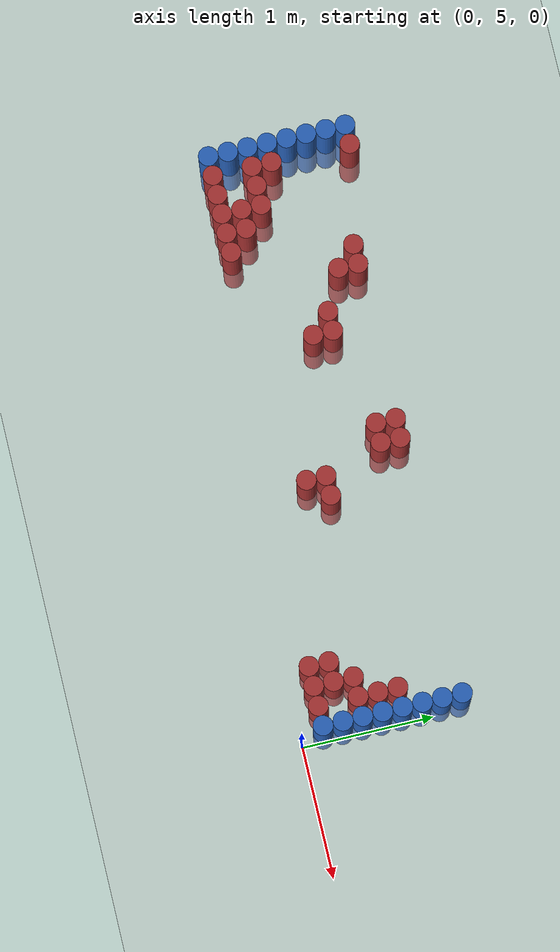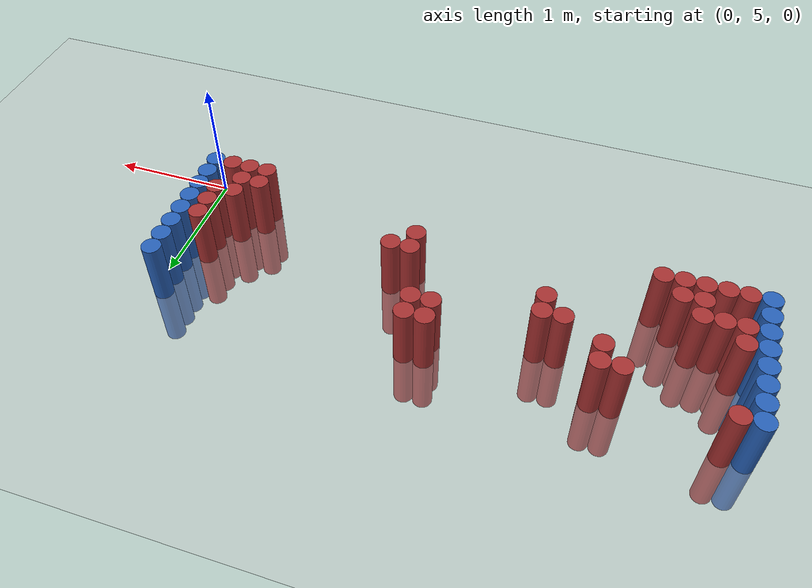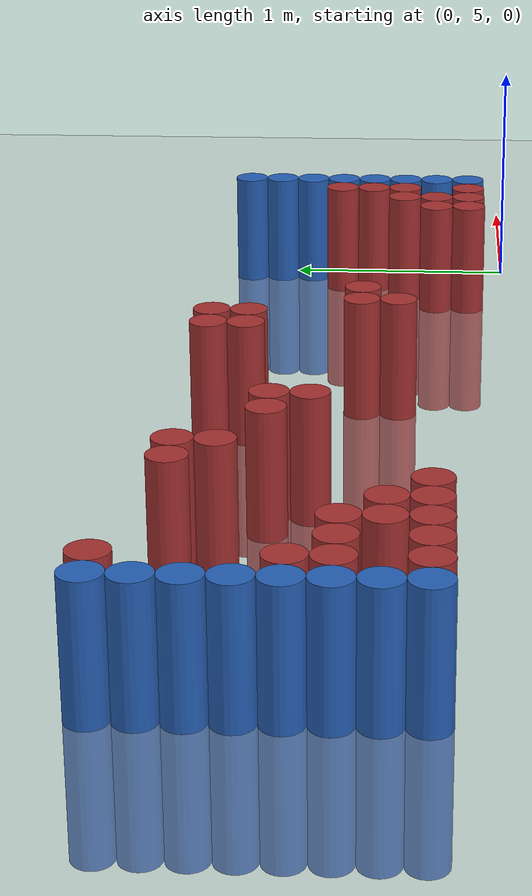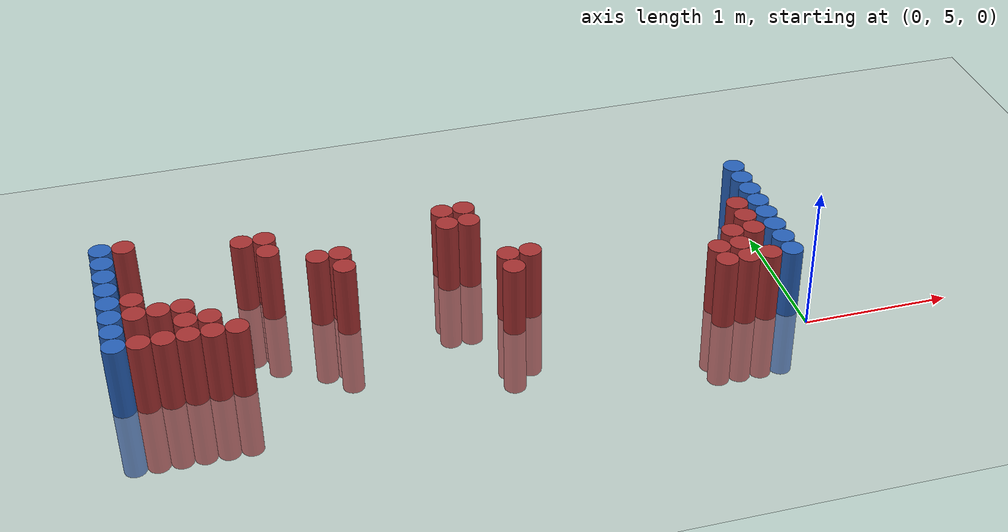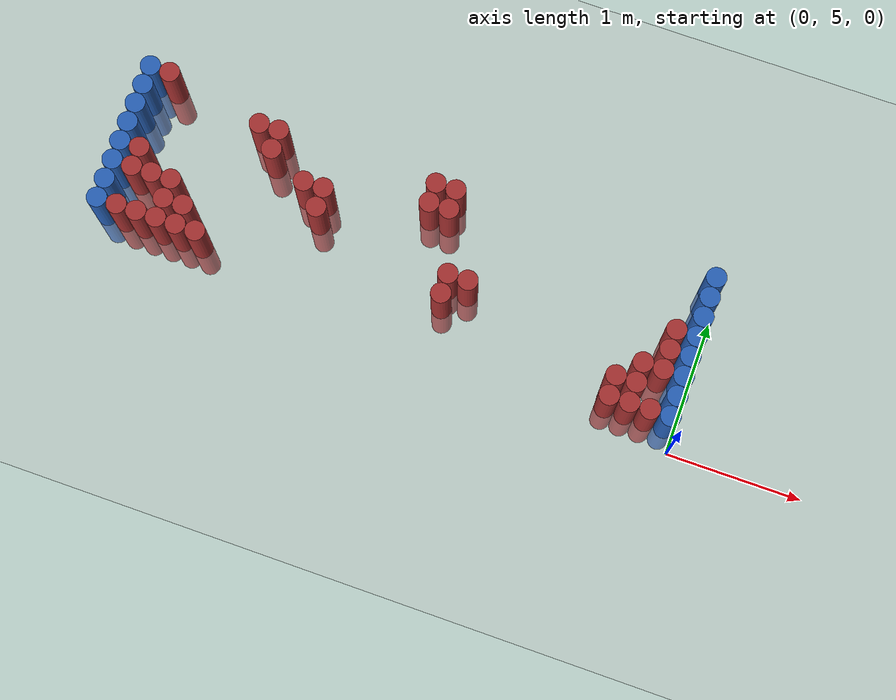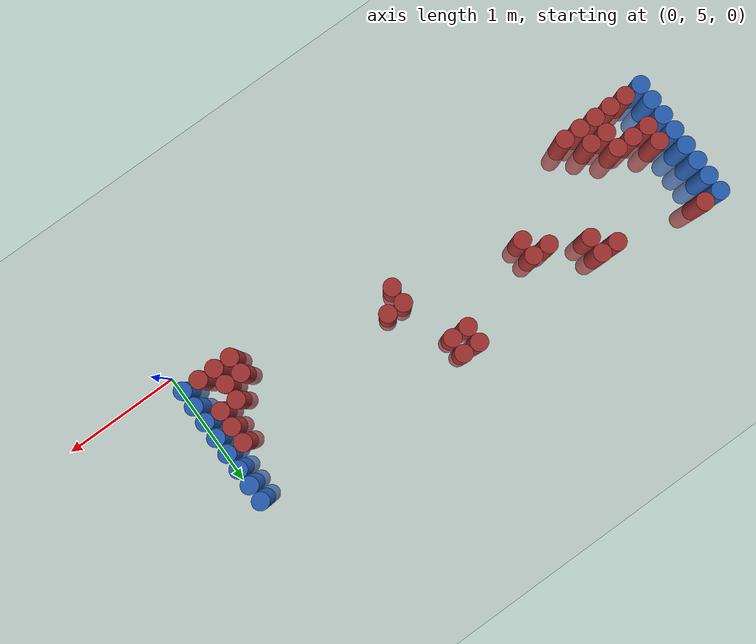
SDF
<sdf version="1.6">
 <world name="default">
  <model name="ground_plane">
   <static>1</static>
   <link name="link">
    <collision name="collision">
     <geometry><plane><normal>0 0 1</normal><size>100 100</size></plane></geometry>
     <surface><friction><ode><mu>100</mu><mu2>50</mu2></ode></friction></surface>
    </collision>
    <visual name="visual">
     <cast_shadows>0</cast_shadows>
     <geometry><plane><normal>0 0 1</normal><size>100 100</size></plane></geometry>
     <material>
      <script><uri>file://media/materials/scripts/gazebo.material</uri><name>Gazebo/Grey</name></script>
     </material>
    </visual>
   </link>
  </model>
  <model name="unit_cylinder_97">
   <static>1</static>
   <pose>-4.425000 5.325000 0.000000 0.000000 0.000000 0.000000</pose>
   <link name="link">
    <inertial>
     <mass>1</mass>
     <inertia><ixx>0.145833</ixx><ixy>0</ixy><ixz>0</ixz><iyy>0.145833</iyy><iyz>0</iyz><izz>0.125</izz></inertia>
    </inertial>
    <collision name="collision">
     <geometry><cylinder><radius>0.075000</radius><length>1</length></cylinder></geometry>
    </collision>
    <visual name="visual">
     <geometry><cylinder><radius>0.075000</radius><length>1</length></cylinder></geometry>
     <material>
      <ambient>0.152000 0.379000 0.720000 1</ambient>
      <diffuse>0.152000 0.379000 0.720000 1</diffuse>
     </material>
     <material>
      <script><name>Gazebo/Grey</name><uri>file://media/materials/scripts/gazebo.material</uri></script>
     </material>
    </visual>
   </link>
  </model>
  <model name="unit_cylinder_98">
   <static>1</static>
   <pose>-4.425000 5.475000 0.000000 0.000000 0.000000 0.000000</pose>
   <link name="link">
    <inertial>
     <mass>1</mass>
     <inertia><ixx>0.145833</ixx><ixy>0</ixy><ixz>0</ixz><iyy>0.145833</iyy><iyz>0</iyz><izz>0.125</izz></inertia>
    </inertial>
    <collision name="collision">
     <geometry><cylinder><radius>0.075000</radius><length>1</length></cylinder></geometry>
    </collision>
    <visual name="visual">
     <geometry><cylinder><radius>0.075000</radius><length>1</length></cylinder></geometry>
     <material>
      <ambient>0.152000 0.379000 0.720000 1</ambient>
      <diffuse>0.152000 0.379000 0.720000 1</diffuse>
     </material>
     <material>
      <script><name>Gazebo/Grey</name><uri>file://media/materials/scripts/gazebo.material</uri></script>
     </material>
    </visual>
   </link>
  </model>
  <model name="unit_cylinder_99">
   <static>1</static>
   <pose>-4.425000 5.625000 0.000000 0.000000 0.000000 0.000000</pose>
   <link name="link">
    <inertial>
     <mass>1</mass>
     <inertia><ixx>0.145833</ixx><ixy>0</ixy><ixz>0</ixz><iyy>0.145833</iyy><iyz>0</iyz><izz>0.125</izz></inertia>
    </inertial>
    <collision name="collision">
     <geometry><cylinder><radius>0.075000</radius><length>1</length></cylinder></geometry>
    </collision>
    <visual name="visual">
     <geometry><cylinder><radius>0.075000</radius><length>1</length></cylinder></geometry>
     <material>
      <ambient>0.152000 0.379000 0.720000 1</ambient>
      <diffuse>0.152000 0.379000 0.720000 1</diffuse>
     </material>
     <material>
      <script><name>Gazebo/Grey</name><uri>file://media/materials/scripts/gazebo.material</uri></script>
     </material>
    </visual>
   </link>
  </model>
  <model name="unit_cylinder_100">
   <static>1</static>
   <pose>-4.425000 5.775000 0.000000 0.000000 0.000000 0.000000</pose>
   <link name="link">
    <inertial>
     <mass>1</mass>
     <inertia><ixx>0.145833</ixx><ixy>0</ixy><ixz>0</ixz><iyy>0.145833</iyy><iyz>0</iyz><izz>0.125</izz></inertia>
    </inertial>
    <collision name="collision">
     <geometry><cylinder><radius>0.075000</radius><length>1</length></cylinder></geometry>
    </collision>
    <visual name="visual">
     <geometry><cylinder><radius>0.075000</radius><length>1</length></cylinder></geometry>
     <material>
      <ambient>0.152000 0.379000 0.720000 1</ambient>
      <diffuse>0.152000 0.379000 0.720000 1</diffuse>
     </material>
     <material>
      <script><name>Gazebo/Grey</name><uri>file://media/materials/scripts/gazebo.material</uri></script>
     </material>
    </visual>
   </link>
  </model>
  <model name="unit_cylinder_101">
   <static>1</static>
   <pose>-4.425000 5.925000 0.000000 0.000000 0.000000 0.000000</pose>
   <link name="link">
    <inertial>
     <mass>1</mass>
     <inertia><ixx>0.145833</ixx><ixy>0</ixy><ixz>0</ixz><iyy>0.145833</iyy><iyz>0</iyz><izz>0.125</izz></inertia>
    </inertial>
    <collision name="collision">
     <geometry><cylinder><radius>0.075000</radius><length>1</length></cylinder></geometry>
    </collision>
    <visual name="visual">
     <geometry><cylinder><radius>0.075000</radius><length>1</length></cylinder></geometry>
     <material>
      <ambient>0.152000 0.379000 0.720000 1</ambient>
      <diffuse>0.152000 0.379000 0.720000 1</diffuse>
     </material>
     <material>
      <script><name>Gazebo/Grey</name><uri>file://media/materials/scripts/gazebo.material</uri></script>
     </material>
    </visual>
   </link>
  </model>
  <model name="unit_cylinder_102">
   <static>1</static>
   <pose>-4.425000 6.075000 0.000000 0.000000 0.000000 0.000000</pose>
   <link name="link">
    <inertial>
     <mass>1</mass>
     <inertia><ixx>0.145833</ixx><ixy>0</ixy><ixz>0</ixz><iyy>0.145833</iyy><iyz>0</iyz><izz>0.125</izz></inertia>
    </inertial>
    <collision name="collision">
     <geometry><cylinder><radius>0.075000</radius><length>1</length></cylinder></geometry>
    </collision>
    <visual name="visual">
     <geometry><cylinder><radius>0.075000</radius><length>1</length></cylinder></geometry>
     <material>
      <ambient>0.152000 0.379000 0.720000 1</ambient>
      <diffuse>0.152000 0.379000 0.720000 1</diffuse>
     </material>
     <material>
      <script><name>Gazebo/Grey</name><uri>file://media/materials/scripts/gazebo.material</uri></script>
     </material>
    </visual>
   </link>
  </model>
  <model name="unit_cylinder_103">
   <static>1</static>
   <pose>-4.425000 6.225000 0.000000 0.000000 0.000000 0.000000</pose>
   <link name="link">
    <inertial>
     <mass>1</mass>
     <inertia><ixx>0.145833</ixx><ixy>0</ixy><ixz>0</ixz><iyy>0.145833</iyy><iyz>0</iyz><izz>0.125</izz></inertia>
    </inertial>
    <collision name="collision">
     <geometry><cylinder><radius>0.075000</radius><length>1</length></cylinder></geometry>
    </collision>
    <visual name="visual">
     <geometry><cylinder><radius>0.075000</radius><length>1</length></cylinder></geometry>
     <material>
      <ambient>0.152000 0.379000 0.720000 1</ambient>
      <diffuse>0.152000 0.379000 0.720000 1</diffuse>
     </material>
     <material>
      <script><name>Gazebo/Grey</name><uri>file://media/materials/scripts/gazebo.material</uri></script>
     </material>
    </visual>
   </link>
  </model>
  <model name="unit_cylinder_104">
   <static>1</static>
   <pose>-4.425000 6.375000 0.000000 0.000000 0.000000 0.000000</pose>
   <link name="link">
    <inertial>
     <mass>1</mass>
     <inertia><ixx>0.145833</ixx><ixy>0</ixy><ixz>0</ixz><iyy>0.145833</iyy><iyz>0</iyz><izz>0.125</izz></inertia>
    </inertial>
    <collision name="collision">
     <geometry><cylinder><radius>0.075000</radius><length>1</length></cylinder></geometry>
    </collision>
    <visual name="visual">
     <geometry><cylinder><radius>0.075000</radius><length>1</length></cylinder></geometry>
     <material>
      <ambient>0.152000 0.379000 0.720000 1</ambient>
      <diffuse>0.152000 0.379000 0.720000 1</diffuse>
     </material>
     <material>
      <script><name>Gazebo/Grey</name><uri>file://media/materials/scripts/gazebo.material</uri></script>
     </material>
    </visual>
   </link>
  </model>
  <model name="unit_cylinder_127">
   <static>1</static>
   <pose>-4.275000 5.325000 0.000000 0.000000 0.000000 0.000000</pose>
   <link name="link">
    <inertial>
     <mass>1</mass>
     <inertia><ixx>0.145833</ixx><ixy>0</ixy><ixz>0</ixz><iyy>0.145833</iyy><iyz>0</iyz><izz>0.125</izz></inertia>
    </inertial>
    <collision name="collision">
     <geometry><cylinder><radius>0.075000</radius><length>1</length></cylinder></geometry>
    </collision>
    <visual name="visual">
     <geometry><cylinder><radius>0.075000</radius><length>1</length></cylinder></geometry>
     <material>
      <ambient>0.648000 0.192000 0.192000 1</ambient>
      <diffuse>0.648000 0.192000 0.192000 1</diffuse>
     </material>
     <material>
      <script><name>Gazebo/Grey</name><uri>file://media/materials/scripts/gazebo.material</uri></script>
     </material>
    </visual>
   </link>
  </model>
  <model name="unit_cylinder_128">
   <static>1</static>
   <pose>-4.275000 5.625000 0.000000 0.000000 0.000000 0.000000</pose>
   <link name="link">
    <inertial>
     <mass>1</mass>
     <inertia><ixx>0.145833</ixx><ixy>0</ixy><ixz>0</ixz><iyy>0.145833</iyy><iyz>0</iyz><izz>0.125</izz></inertia>
    </inertial>
    <collision name="collision">
     <geometry><cylinder><radius>0.075000</radius><length>1</length></cylinder></geometry>
    </collision>
    <visual name="visual">
     <geometry><cylinder><radius>0.075000</radius><length>1</length></cylinder></geometry>
     <material>
      <ambient>0.648000 0.192000 0.192000 1</ambient>
      <diffuse>0.648000 0.192000 0.192000 1</diffuse>
     </material>
     <material>
      <script><name>Gazebo/Grey</name><uri>file://media/materials/scripts/gazebo.material</uri></script>
     </material>
    </visual>
   </link>
  </model>
  <model name="unit_cylinder_129">
   <static>1</static>
   <pose>-4.275000 5.775000 0.000000 0.000000 0.000000 0.000000</pose>
   <link name="link">
    <inertial>
     <mass>1</mass>
     <inertia><ixx>0.145833</ixx><ixy>0</ixy><ixz>0</ixz><iyy>0.145833</iyy><iyz>0</iyz><izz>0.125</izz></inertia>
    </inertial>
    <collision name="collision">
     <geometry><cylinder><radius>0.075000</radius><length>1</length></cylinder></geometry>
    </collision>
    <visual name="visual">
     <geometry><cylinder><radius>0.075000</radius><length>1</length></cylinder></geometry>
     <material>
      <ambient>0.648000 0.192000 0.192000 1</ambient>
      <diffuse>0.648000 0.192000 0.192000 1</diffuse>
     </material>
     <material>
      <script><name>Gazebo/Grey</name><uri>file://media/materials/scripts/gazebo.material</uri></script>
     </material>
    </visual>
   </link>
  </model>
  <model name="unit_cylinder_130">
   <static>1</static>
   <pose>-4.275000 6.375000 0.000000 0.000000 0.000000 0.000000</pose>
   <link name="link">
    <inertial>
     <mass>1</mass>
     <inertia><ixx>0.145833</ixx><ixy>0</ixy><ixz>0</ixz><iyy>0.145833</iyy><iyz>0</iyz><izz>0.125</izz></inertia>
    </inertial>
    <collision name="collision">
     <geometry><cylinder><radius>0.075000</radius><length>1</length></cylinder></geometry>
    </collision>
    <visual name="visual">
     <geometry><cylinder><radius>0.075000</radius><length>1</length></cylinder></geometry>
     <material>
      <ambient>0.648000 0.192000 0.192000 1</ambient>
      <diffuse>0.648000 0.192000 0.192000 1</diffuse>
     </material>
     <material>
      <script><name>Gazebo/Grey</name><uri>file://media/materials/scripts/gazebo.material</uri></script>
     </material>
    </visual>
   </link>
  </model>
  <model name="unit_cylinder_141">
   <static>1</static>
   <pose>-4.125000 5.325000 0.000000 0.000000 0.000000 0.000000</pose>
   <link name="link">
    <inertial>
     <mass>1</mass>
     <inertia><ixx>0.145833</ixx><ixy>0</ixy><ixz>0</ixz><iyy>0.145833</iyy><iyz>0</iyz><izz>0.125</izz></inertia>
    </inertial>
    <collision name="collision">
     <geometry><cylinder><radius>0.075000</radius><length>1</length></cylinder></geometry>
    </collision>
    <visual name="visual">
     <geometry><cylinder><radius>0.075000</radius><length>1</length></cylinder></geometry>
     <material>
      <ambient>0.648000 0.192000 0.192000 1</ambient>
      <diffuse>0.648000 0.192000 0.192000 1</diffuse>
     </material>
     <material>
      <script><name>Gazebo/Grey</name><uri>file://media/materials/scripts/gazebo.material</uri></script>
     </material>
    </visual>
   </link>
  </model>
  <model name="unit_cylinder_142">
   <static>1</static>
   <pose>-4.125000 5.625000 0.000000 0.000000 0.000000 0.000000</pose>
   <link name="link">
    <inertial>
     <mass>1</mass>
     <inertia><ixx>0.145833</ixx><ixy>0</ixy><ixz>0</ixz><iyy>0.145833</iyy><iyz>0</iyz><izz>0.125</izz></inertia>
    </inertial>
    <collision name="collision">
     <geometry><cylinder><radius>0.075000</radius><length>1</length></cylinder></geometry>
    </collision>
    <visual name="visual">
     <geometry><cylinder><radius>0.075000</radius><length>1</length></cylinder></geometry>
     <material>
      <ambient>0.648000 0.192000 0.192000 1</ambient>
      <diffuse>0.648000 0.192000 0.192000 1</diffuse>
     </material>
     <material>
      <script><name>Gazebo/Grey</name><uri>file://media/materials/scripts/gazebo.material</uri></script>
     </material>
    </visual>
   </link>
  </model>
  <model name="unit_cylinder_148">
   <static>1</static>
   <pose>-3.975000 5.325000 0.000000 0.000000 0.000000 0.000000</pose>
   <link name="link">
    <inertial>
     <mass>1</mass>
     <inertia><ixx>0.145833</ixx><ixy>0</ixy><ixz>0</ixz><iyy>0.145833</iyy><iyz>0</iyz><izz>0.125</izz></inertia>
    </inertial>
    <collision name="collision">
     <geometry><cylinder><radius>0.075000</radius><length>1</length></cylinder></geometry>
    </collision>
    <visual name="visual">
     <geometry><cylinder><radius>0.075000</radius><length>1</length></cylinder></geometry>
     <material>
      <ambient>0.648000 0.192000 0.192000 1</ambient>
      <diffuse>0.648000 0.192000 0.192000 1</diffuse>
     </material>
     <material>
      <script><name>Gazebo/Grey</name><uri>file://media/materials/scripts/gazebo.material</uri></script>
     </material>
    </visual>
   </link>
  </model>
  <model name="unit_cylinder_149">
   <static>1</static>
   <pose>-3.975000 5.475000 0.000000 0.000000 0.000000 0.000000</pose>
   <link name="link">
    <inertial>
     <mass>1</mass>
     <inertia><ixx>0.145833</ixx><ixy>0</ixy><ixz>0</ixz><iyy>0.145833</iyy><iyz>0</iyz><izz>0.125</izz></inertia>
    </inertial>
    <collision name="collision">
     <geometry><cylinder><radius>0.075000</radius><length>1</length></cylinder></geometry>
    </collision>
    <visual name="visual">
     <geometry><cylinder><radius>0.075000</radius><length>1</length></cylinder></geometry>
     <material>
      <ambient>0.648000 0.192000 0.192000 1</ambient>
      <diffuse>0.648000 0.192000 0.192000 1</diffuse>
     </material>
     <material>
      <script><name>Gazebo/Grey</name><uri>file://media/materials/scripts/gazebo.material</uri></script>
     </material>
    </visual>
   </link>
  </model>
  <model name="unit_cylinder_150">
   <static>1</static>
   <pose>-3.975000 5.625000 0.000000 0.000000 0.000000 0.000000</pose>
   <link name="link">
    <inertial>
     <mass>1</mass>
     <inertia><ixx>0.145833</ixx><ixy>0</ixy><ixz>0</ixz><iyy>0.145833</iyy><iyz>0</iyz><izz>0.125</izz></inertia>
    </inertial>
    <collision name="collision">
     <geometry><cylinder><radius>0.075000</radius><length>1</length></cylinder></geometry>
    </collision>
    <visual name="visual">
     <geometry><cylinder><radius>0.075000</radius><length>1</length></cylinder></geometry>
     <material>
      <ambient>0.648000 0.192000 0.192000 1</ambient>
      <diffuse>0.648000 0.192000 0.192000 1</diffuse>
     </material>
     <material>
      <script><name>Gazebo/Grey</name><uri>file://media/materials/scripts/gazebo.material</uri></script>
     </material>
    </visual>
   </link>
  </model>
  <model name="unit_cylinder_157">
   <static>1</static>
   <pose>-3.825000 5.325000 0.000000 0.000000 0.000000 0.000000</pose>
   <link name="link">
    <inertial>
     <mass>1</mass>
     <inertia><ixx>0.145833</ixx><ixy>0</ixy><ixz>0</ixz><iyy>0.145833</iyy><iyz>0</iyz><izz>0.125</izz></inertia>
    </inertial>
    <collision name="collision">
     <geometry><cylinder><radius>0.075000</radius><length>1</length></cylinder></geometry>
    </collision>
    <visual name="visual">
     <geometry><cylinder><radius>0.075000</radius><length>1</length></cylinder></geometry>
     <material>
      <ambient>0.648000 0.192000 0.192000 1</ambient>
      <diffuse>0.648000 0.192000 0.192000 1</diffuse>
     </material>
     <material>
      <script><name>Gazebo/Grey</name><uri>file://media/materials/scripts/gazebo.material</uri></script>
     </material>
    </visual>
   </link>
  </model>
  <model name="unit_cylinder_158">
   <static>1</static>
   <pose>-3.825000 5.475000 0.000000 0.000000 0.000000 0.000000</pose>
   <link name="link">
    <inertial>
     <mass>1</mass>
     <inertia><ixx>0.145833</ixx><ixy>0</ixy><ixz>0</ixz><iyy>0.145833</iyy><iyz>0</iyz><izz>0.125</izz></inertia>
    </inertial>
    <collision name="collision">
     <geometry><cylinder><radius>0.075000</radius><length>1</length></cylinder></geometry>
    </collision>
    <visual name="visual">
     <geometry><cylinder><radius>0.075000</radius><length>1</length></cylinder></geometry>
     <material>
      <ambient>0.648000 0.192000 0.192000 1</ambient>
      <diffuse>0.648000 0.192000 0.192000 1</diffuse>
     </material>
     <material>
      <script><name>Gazebo/Grey</name><uri>file://media/materials/scripts/gazebo.material</uri></script>
     </material>
    </visual>
   </link>
  </model>
  <model name="unit_cylinder_166">
   <static>1</static>
   <pose>-3.675000 5.325000 0.000000 0.000000 0.000000 0.000000</pose>
   <link name="link">
    <inertial>
     <mass>1</mass>
     <inertia><ixx>0.145833</ixx><ixy>0</ixy><ixz>0</ixz><iyy>0.145833</iyy><iyz>0</iyz><izz>0.125</izz></inertia>
    </inertial>
    <collision name="collision">
     <geometry><cylinder><radius>0.075000</radius><length>1</length></cylinder></geometry>
    </collision>
    <visual name="visual">
     <geometry><cylinder><radius>0.075000</radius><length>1</length></cylinder></geometry>
     <material>
      <ambient>0.648000 0.192000 0.192000 1</ambient>
      <diffuse>0.648000 0.192000 0.192000 1</diffuse>
     </material>
     <material>
      <script><name>Gazebo/Grey</name><uri>file://media/materials/scripts/gazebo.material</uri></script>
     </material>
    </visual>
   </link>
  </model>
  <model name="unit_cylinder_175">
   <static>1</static>
   <pose>-3.525000 6.225000 0.000000 0.000000 0.000000 0.000000</pose>
   <link name="link">
    <inertial>
     <mass>1</mass>
     <inertia><ixx>0.145833</ixx><ixy>0</ixy><ixz>0</ixz><iyy>0.145833</iyy><iyz>0</iyz><izz>0.125</izz></inertia>
    </inertial>
    <collision name="collision">
     <geometry><cylinder><radius>0.075000</radius><length>1</length></cylinder></geometry>
    </collision>
    <visual name="visual">
     <geometry><cylinder><radius>0.075000</radius><length>1</length></cylinder></geometry>
     <material>
      <ambient>0.648000 0.192000 0.192000 1</ambient>
      <diffuse>0.648000 0.192000 0.192000 1</diffuse>
     </material>
     <material>
      <script><name>Gazebo/Grey</name><uri>file://media/materials/scripts/gazebo.material</uri></script>
     </material>
    </visual>
   </link>
  </model>
  <model name="unit_cylinder_184">
   <static>1</static>
   <pose>-3.375000 6.075000 0.000000 0.000000 0.000000 0.000000</pose>
   <link name="link">
    <inertial>
     <mass>1</mass>
     <inertia><ixx>0.145833</ixx><ixy>0</ixy><ixz>0</ixz><iyy>0.145833</iyy><iyz>0</iyz><izz>0.125</izz></inertia>
    </inertial>
    <collision name="collision">
     <geometry><cylinder><radius>0.075000</radius><length>1</length></cylinder></geometry>
    </collision>
    <visual name="visual">
     <geometry><cylinder><radius>0.075000</radius><length>1</length></cylinder></geometry>
     <material>
      <ambient>0.648000 0.192000 0.192000 1</ambient>
      <diffuse>0.648000 0.192000 0.192000 1</diffuse>
     </material>
     <material>
      <script><name>Gazebo/Grey</name><uri>file://media/materials/scripts/gazebo.material</uri></script>
     </material>
    </visual>
   </link>
  </model>
  <model name="unit_cylinder_185">
   <static>1</static>
   <pose>-3.375000 6.225000 0.000000 0.000000 0.000000 0.000000</pose>
   <link name="link">
    <inertial>
     <mass>1</mass>
     <inertia><ixx>0.145833</ixx><ixy>0</ixy><ixz>0</ixz><iyy>0.145833</iyy><iyz>0</iyz><izz>0.125</izz></inertia>
    </inertial>
    <collision name="collision">
     <geometry><cylinder><radius>0.075000</radius><length>1</length></cylinder></geometry>
    </collision>
    <visual name="visual">
     <geometry><cylinder><radius>0.075000</radius><length>1</length></cylinder></geometry>
     <material>
      <ambient>0.648000 0.192000 0.192000 1</ambient>
      <diffuse>0.648000 0.192000 0.192000 1</diffuse>
     </material>
     <material>
      <script><name>Gazebo/Grey</name><uri>file://media/materials/scripts/gazebo.material</uri></script>
     </material>
    </visual>
   </link>
  </model>
  <model name="unit_cylinder_194">
   <static>1</static>
   <pose>-3.075000 5.925000 0.000000 0.000000 0.000000 0.000000</pose>
   <link name="link">
    <inertial>
     <mass>1</mass>
     <inertia><ixx>0.145833</ixx><ixy>0</ixy><ixz>0</ixz><iyy>0.145833</iyy><iyz>0</iyz><izz>0.125</izz></inertia>
    </inertial>
    <collision name="collision">
     <geometry><cylinder><radius>0.075000</radius><length>1</length></cylinder></geometry>
    </collision>
    <visual name="visual">
     <geometry><cylinder><radius>0.075000</radius><length>1</length></cylinder></geometry>
     <material>
      <ambient>0.648000 0.192000 0.192000 1</ambient>
      <diffuse>0.648000 0.192000 0.192000 1</diffuse>
     </material>
     <material>
      <script><name>Gazebo/Grey</name><uri>file://media/materials/scripts/gazebo.material</uri></script>
     </material>
    </visual>
   </link>
  </model>
  <model name="unit_cylinder_196">
   <static>1</static>
   <pose>-2.925000 5.775000 0.000000 0.000000 0.000000 0.000000</pose>
   <link name="link">
    <inertial>
     <mass>1</mass>
     <inertia><ixx>0.145833</ixx><ixy>0</ixy><ixz>0</ixz><iyy>0.145833</iyy><iyz>0</iyz><izz>0.125</izz></inertia>
    </inertial>
    <collision name="collision">
     <geometry><cylinder><radius>0.075000</radius><length>1</length></cylinder></geometry>
    </collision>
    <visual name="visual">
     <geometry><cylinder><radius>0.075000</radius><length>1</length></cylinder></geometry>
     <material>
      <ambient>0.648000 0.192000 0.192000 1</ambient>
      <diffuse>0.648000 0.192000 0.192000 1</diffuse>
     </material>
     <material>
      <script><name>Gazebo/Grey</name><uri>file://media/materials/scripts/gazebo.material</uri></script>
     </material>
    </visual>
   </link>
  </model>
  <model name="unit_cylinder_197">
   <static>1</static>
   <pose>-2.925000 5.925000 0.000000 0.000000 0.000000 0.000000</pose>
   <link name="link">
    <inertial>
     <mass>1</mass>
     <inertia><ixx>0.145833</ixx><ixy>0</ixy><ixz>0</ixz><iyy>0.145833</iyy><iyz>0</iyz><izz>0.125</izz></inertia>
    </inertial>
    <collision name="collision">
     <geometry><cylinder><radius>0.075000</radius><length>1</length></cylinder></geometry>
    </collision>
    <visual name="visual">
     <geometry><cylinder><radius>0.075000</radius><length>1</length></cylinder></geometry>
     <material>
      <ambient>0.648000 0.192000 0.192000 1</ambient>
      <diffuse>0.648000 0.192000 0.192000 1</diffuse>
     </material>
     <material>
      <script><name>Gazebo/Grey</name><uri>file://media/materials/scripts/gazebo.material</uri></script>
     </material>
    </visual>
   </link>
  </model>
  <model name="unit_cylinder_217">
   <static>1</static>
   <pose>-2.175000 6.075000 0.000000 0.000000 0.000000 0.000000</pose>
   <link name="link">
    <inertial>
     <mass>1</mass>
     <inertia><ixx>0.145833</ixx><ixy>0</ixy><ixz>0</ixz><iyy>0.145833</iyy><iyz>0</iyz><izz>0.125</izz></inertia>
    </inertial>
    <collision name="collision">
     <geometry><cylinder><radius>0.075000</radius><length>1</length></cylinder></geometry>
    </collision>
    <visual name="visual">
     <geometry><cylinder><radius>0.075000</radius><length>1</length></cylinder></geometry>
     <material>
      <ambient>0.648000 0.192000 0.192000 1</ambient>
      <diffuse>0.648000 0.192000 0.192000 1</diffuse>
     </material>
     <material>
      <script><name>Gazebo/Grey</name><uri>file://media/materials/scripts/gazebo.material</uri></script>
     </material>
    </visual>
   </link>
  </model>
  <model name="unit_cylinder_218">
   <static>1</static>
   <pose>-2.175000 6.225000 0.000000 0.000000 0.000000 0.000000</pose>
   <link name="link">
    <inertial>
     <mass>1</mass>
     <inertia><ixx>0.145833</ixx><ixy>0</ixy><ixz>0</ixz><iyy>0.145833</iyy><iyz>0</iyz><izz>0.125</izz></inertia>
    </inertial>
    <collision name="collision">
     <geometry><cylinder><radius>0.075000</radius><length>1</length></cylinder></geometry>
    </collision>
    <visual name="visual">
     <geometry><cylinder><radius>0.075000</radius><length>1</length></cylinder></geometry>
     <material>
      <ambient>0.648000 0.192000 0.192000 1</ambient>
      <diffuse>0.648000 0.192000 0.192000 1</diffuse>
     </material>
     <material>
      <script><name>Gazebo/Grey</name><uri>file://media/materials/scripts/gazebo.material</uri></script>
     </material>
    </visual>
   </link>
  </model>
  <model name="unit_cylinder_221">
   <static>1</static>
   <pose>-2.025000 6.075000 0.000000 0.000000 0.000000 0.000000</pose>
   <link name="link">
    <inertial>
     <mass>1</mass>
     <inertia><ixx>0.145833</ixx><ixy>0</ixy><ixz>0</ixz><iyy>0.145833</iyy><iyz>0</iyz><izz>0.125</izz></inertia>
    </inertial>
    <collision name="collision">
     <geometry><cylinder><radius>0.075000</radius><length>1</length></cylinder></geometry>
    </collision>
    <visual name="visual">
     <geometry><cylinder><radius>0.075000</radius><length>1</length></cylinder></geometry>
     <material>
      <ambient>0.648000 0.192000 0.192000 1</ambient>
      <diffuse>0.648000 0.192000 0.192000 1</diffuse>
     </material>
     <material>
      <script><name>Gazebo/Grey</name><uri>file://media/materials/scripts/gazebo.material</uri></script>
     </material>
    </visual>
   </link>
  </model>
  <model name="unit_cylinder_222">
   <static>1</static>
   <pose>-2.025000 6.225000 0.000000 0.000000 0.000000 0.000000</pose>
   <link name="link">
    <inertial>
     <mass>1</mass>
     <inertia><ixx>0.145833</ixx><ixy>0</ixy><ixz>0</ixz><iyy>0.145833</iyy><iyz>0</iyz><izz>0.125</izz></inertia>
    </inertial>
    <collision name="collision">
     <geometry><cylinder><radius>0.075000</radius><length>1</length></cylinder></geometry>
    </collision>
    <visual name="visual">
     <geometry><cylinder><radius>0.075000</radius><length>1</length></cylinder></geometry>
     <material>
      <ambient>0.648000 0.192000 0.192000 1</ambient>
      <diffuse>0.648000 0.192000 0.192000 1</diffuse>
     </material>
     <material>
      <script><name>Gazebo/Grey</name><uri>file://media/materials/scripts/gazebo.material</uri></script>
     </material>
    </visual>
   </link>
  </model>
  <model name="unit_cylinder_225">
   <static>1</static>
   <pose>-1.875000 5.475000 0.000000 0.000000 0.000000 0.000000</pose>
   <link name="link">
    <inertial>
     <mass>1</mass>
     <inertia><ixx>0.145833</ixx><ixy>0</ixy><ixz>0</ixz><iyy>0.145833</iyy><iyz>0</iyz><izz>0.125</izz></inertia>
    </inertial>
    <collision name="collision">
     <geometry><cylinder><radius>0.075000</radius><length>1</length></cylinder></geometry>
    </collision>
    <visual name="visual">
     <geometry><cylinder><radius>0.075000</radius><length>1</length></cylinder></geometry>
     <material>
      <ambient>0.648000 0.192000 0.192000 1</ambient>
      <diffuse>0.648000 0.192000 0.192000 1</diffuse>
     </material>
     <material>
      <script><name>Gazebo/Grey</name><uri>file://media/materials/scripts/gazebo.material</uri></script>
     </material>
    </visual>
   </link>
  </model>
  <model name="unit_cylinder_226">
   <static>1</static>
   <pose>-1.875000 5.625000 0.000000 0.000000 0.000000 0.000000</pose>
   <link name="link">
    <inertial>
     <mass>1</mass>
     <inertia><ixx>0.145833</ixx><ixy>0</ixy><ixz>0</ixz><iyy>0.145833</iyy><iyz>0</iyz><izz>0.125</izz></inertia>
    </inertial>
    <collision name="collision">
     <geometry><cylinder><radius>0.075000</radius><length>1</length></cylinder></geometry>
    </collision>
    <visual name="visual">
     <geometry><cylinder><radius>0.075000</radius><length>1</length></cylinder></geometry>
     <material>
      <ambient>0.648000 0.192000 0.192000 1</ambient>
      <diffuse>0.648000 0.192000 0.192000 1</diffuse>
     </material>
     <material>
      <script><name>Gazebo/Grey</name><uri>file://media/materials/scripts/gazebo.material</uri></script>
     </material>
    </visual>
   </link>
  </model>
  <model name="unit_cylinder_233">
   <static>1</static>
   <pose>-1.725000 5.625000 0.000000 0.000000 0.000000 0.000000</pose>
   <link name="link">
    <inertial>
     <mass>1</mass>
     <inertia><ixx>0.145833</ixx><ixy>0</ixy><ixz>0</ixz><iyy>0.145833</iyy><iyz>0</iyz><izz>0.125</izz></inertia>
    </inertial>
    <collision name="collision">
     <geometry><cylinder><radius>0.075000</radius><length>1</length></cylinder></geometry>
    </collision>
    <visual name="visual">
     <geometry><cylinder><radius>0.075000</radius><length>1</length></cylinder></geometry>
     <material>
      <ambient>0.648000 0.192000 0.192000 1</ambient>
      <diffuse>0.648000 0.192000 0.192000 1</diffuse>
     </material>
     <material>
      <script><name>Gazebo/Grey</name><uri>file://media/materials/scripts/gazebo.material</uri></script>
     </material>
    </visual>
   </link>
  </model>
  <model name="unit_cylinder_247">
   <static>1</static>
   <pose>-0.525000 5.175000 0.000000 0.000000 0.000000 0.000000</pose>
   <link name="link">
    <inertial>
     <mass>1</mass>
     <inertia><ixx>0.145833</ixx><ixy>0</ixy><ixz>0</ixz><iyy>0.145833</iyy><iyz>0</iyz><izz>0.125</izz></inertia>
    </inertial>
    <collision name="collision">
     <geometry><cylinder><radius>0.075000</radius><length>1</length></cylinder></geometry>
    </collision>
    <visual name="visual">
     <geometry><cylinder><radius>0.075000</radius><length>1</length></cylinder></geometry>
     <material>
      <ambient>0.648000 0.192000 0.192000 1</ambient>
      <diffuse>0.648000 0.192000 0.192000 1</diffuse>
     </material>
     <material>
      <script><name>Gazebo/Grey</name><uri>file://media/materials/scripts/gazebo.material</uri></script>
     </material>
    </visual>
   </link>
  </model>
  <model name="unit_cylinder_248">
   <static>1</static>
   <pose>-0.525000 5.325000 0.000000 0.000000 0.000000 0.000000</pose>
   <link name="link">
    <inertial>
     <mass>1</mass>
     <inertia><ixx>0.145833</ixx><ixy>0</ixy><ixz>0</ixz><iyy>0.145833</iyy><iyz>0</iyz><izz>0.125</izz></inertia>
    </inertial>
    <collision name="collision">
     <geometry><cylinder><radius>0.075000</radius><length>1</length></cylinder></geometry>
    </collision>
    <visual name="visual">
     <geometry><cylinder><radius>0.075000</radius><length>1</length></cylinder></geometry>
     <material>
      <ambient>0.648000 0.192000 0.192000 1</ambient>
      <diffuse>0.648000 0.192000 0.192000 1</diffuse>
     </material>
     <material>
      <script><name>Gazebo/Grey</name><uri>file://media/materials/scripts/gazebo.material</uri></script>
     </material>
    </visual>
   </link>
  </model>
  <model name="unit_cylinder_250">
   <static>1</static>
   <pose>-0.375000 5.175000 0.000000 0.000000 0.000000 0.000000</pose>
   <link name="link">
    <inertial>
     <mass>1</mass>
     <inertia><ixx>0.145833</ixx><ixy>0</ixy><ixz>0</ixz><iyy>0.145833</iyy><iyz>0</iyz><izz>0.125</izz></inertia>
    </inertial>
    <collision name="collision">
     <geometry><cylinder><radius>0.075000</radius><length>1</length></cylinder></geometry>
    </collision>
    <visual name="visual">
     <geometry><cylinder><radius>0.075000</radius><length>1</length></cylinder></geometry>
     <material>
      <ambient>0.648000 0.192000 0.192000 1</ambient>
      <diffuse>0.648000 0.192000 0.192000 1</diffuse>
     </material>
     <material>
      <script><name>Gazebo/Grey</name><uri>file://media/materials/scripts/gazebo.material</uri></script>
     </material>
    </visual>
   </link>
  </model>
  <model name="unit_cylinder_251">
   <static>1</static>
   <pose>-0.375000 5.325000 0.000000 0.000000 0.000000 0.000000</pose>
   <link name="link">
    <inertial>
     <mass>1</mass>
     <inertia><ixx>0.145833</ixx><ixy>0</ixy><ixz>0</ixz><iyy>0.145833</iyy><iyz>0</iyz><izz>0.125</izz></inertia>
    </inertial>
    <collision name="collision">
     <geometry><cylinder><radius>0.075000</radius><length>1</length></cylinder></geometry>
    </collision>
    <visual name="visual">
     <geometry><cylinder><radius>0.075000</radius><length>1</length></cylinder></geometry>
     <material>
      <ambient>0.648000 0.192000 0.192000 1</ambient>
      <diffuse>0.648000 0.192000 0.192000 1</diffuse>
     </material>
     <material>
      <script><name>Gazebo/Grey</name><uri>file://media/materials/scripts/gazebo.material</uri></script>
     </material>
    </visual>
   </link>
  </model>
  <model name="unit_cylinder_252">
   <static>1</static>
   <pose>-0.375000 5.475000 0.000000 0.000000 0.000000 0.000000</pose>
   <link name="link">
    <inertial>
     <mass>1</mass>
     <inertia><ixx>0.145833</ixx><ixy>0</ixy><ixz>0</ixz><iyy>0.145833</iyy><iyz>0</iyz><izz>0.125</izz></inertia>
    </inertial>
    <collision name="collision">
     <geometry><cylinder><radius>0.075000</radius><length>1</length></cylinder></geometry>
    </collision>
    <visual name="visual">
     <geometry><cylinder><radius>0.075000</radius><length>1</length></cylinder></geometry>
     <material>
      <ambient>0.648000 0.192000 0.192000 1</ambient>
      <diffuse>0.648000 0.192000 0.192000 1</diffuse>
     </material>
     <material>
      <script><name>Gazebo/Grey</name><uri>file://media/materials/scripts/gazebo.material</uri></script>
     </material>
    </visual>
   </link>
  </model>
  <model name="unit_cylinder_255">
   <static>1</static>
   <pose>-0.225000 5.175000 0.000000 0.000000 0.000000 0.000000</pose>
   <link name="link">
    <inertial>
     <mass>1</mass>
     <inertia><ixx>0.145833</ixx><ixy>0</ixy><ixz>0</ixz><iyy>0.145833</iyy><iyz>0</iyz><izz>0.125</izz></inertia>
    </inertial>
    <collision name="collision">
     <geometry><cylinder><radius>0.075000</radius><length>1</length></cylinder></geometry>
    </collision>
    <visual name="visual">
     <geometry><cylinder><radius>0.075000</radius><length>1</length></cylinder></geometry>
     <material>
      <ambient>0.648000 0.192000 0.192000 1</ambient>
      <diffuse>0.648000 0.192000 0.192000 1</diffuse>
     </material>
     <material>
      <script><name>Gazebo/Grey</name><uri>file://media/materials/scripts/gazebo.material</uri></script>
     </material>
    </visual>
   </link>
  </model>
  <model name="unit_cylinder_256">
   <static>1</static>
   <pose>-0.225000 5.475000 0.000000 0.000000 0.000000 0.000000</pose>
   <link name="link">
    <inertial>
     <mass>1</mass>
     <inertia><ixx>0.145833</ixx><ixy>0</ixy><ixz>0</ixz><iyy>0.145833</iyy><iyz>0</iyz><izz>0.125</izz></inertia>
    </inertial>
    <collision name="collision">
     <geometry><cylinder><radius>0.075000</radius><length>1</length></cylinder></geometry>
    </collision>
    <visual name="visual">
     <geometry><cylinder><radius>0.075000</radius><length>1</length></cylinder></geometry>
     <material>
      <ambient>0.648000 0.192000 0.192000 1</ambient>
      <diffuse>0.648000 0.192000 0.192000 1</diffuse>
     </material>
     <material>
      <script><name>Gazebo/Grey</name><uri>file://media/materials/scripts/gazebo.material</uri></script>
     </material>
    </visual>
   </link>
  </model>
  <model name="unit_cylinder_257">
   <static>1</static>
   <pose>-0.225000 5.625000 0.000000 0.000000 0.000000 0.000000</pose>
   <link name="link">
    <inertial>
     <mass>1</mass>
     <inertia><ixx>0.145833</ixx><ixy>0</ixy><ixz>0</ixz><iyy>0.145833</iyy><iyz>0</iyz><izz>0.125</izz></inertia>
    </inertial>
    <collision name="collision">
     <geometry><cylinder><radius>0.075000</radius><length>1</length></cylinder></geometry>
    </collision>
    <visual name="visual">
     <geometry><cylinder><radius>0.075000</radius><length>1</length></cylinder></geometry>
     <material>
      <ambient>0.648000 0.192000 0.192000 1</ambient>
      <diffuse>0.648000 0.192000 0.192000 1</diffuse>
     </material>
     <material>
      <script><name>Gazebo/Grey</name><uri>file://media/materials/scripts/gazebo.material</uri></script>
     </material>
    </visual>
   </link>
  </model>
  <model name="unit_cylinder_258">
   <static>1</static>
   <pose>-0.225000 5.775000 0.000000 0.000000 0.000000 0.000000</pose>
   <link name="link">
    <inertial>
     <mass>1</mass>
     <inertia><ixx>0.145833</ixx><ixy>0</ixy><ixz>0</ixz><iyy>0.145833</iyy><iyz>0</iyz><izz>0.125</izz></inertia>
    </inertial>
    <collision name="collision">
     <geometry><cylinder><radius>0.075000</radius><length>1</length></cylinder></geometry>
    </collision>
    <visual name="visual">
     <geometry><cylinder><radius>0.075000</radius><length>1</length></cylinder></geometry>
     <material>
      <ambient>0.648000 0.192000 0.192000 1</ambient>
      <diffuse>0.648000 0.192000 0.192000 1</diffuse>
     </material>
     <material>
      <script><name>Gazebo/Grey</name><uri>file://media/materials/scripts/gazebo.material</uri></script>
     </material>
    </visual>
   </link>
  </model>
  <model name="unit_cylinder_271">
   <static>1</static>
   <pose>-0.075000 5.175000 0.000000 0.000000 0.000000 0.000000</pose>
   <link name="link">
    <inertial>
     <mass>1</mass>
     <inertia><ixx>0.145833</ixx><ixy>0</ixy><ixz>0</ixz><iyy>0.145833</iyy><iyz>0</iyz><izz>0.125</izz></inertia>
    </inertial>
    <collision name="collision">
     <geometry><cylinder><radius>0.075000</radius><length>1</length></cylinder></geometry>
    </collision>
    <visual name="visual">
     <geometry><cylinder><radius>0.075000</radius><length>1</length></cylinder></geometry>
     <material>
      <ambient>0.152000 0.379000 0.720000 1</ambient>
      <diffuse>0.152000 0.379000 0.720000 1</diffuse>
     </material>
     <material>
      <script><name>Gazebo/Grey</name><uri>file://media/materials/scripts/gazebo.material</uri></script>
     </material>
    </visual>
   </link>
  </model>
  <model name="unit_cylinder_272">
   <static>1</static>
   <pose>-0.075000 5.325000 0.000000 0.000000 0.000000 0.000000</pose>
   <link name="link">
    <inertial>
     <mass>1</mass>
     <inertia><ixx>0.145833</ixx><ixy>0</ixy><ixz>0</ixz><iyy>0.145833</iyy><iyz>0</iyz><izz>0.125</izz></inertia>
    </inertial>
    <collision name="collision">
     <geometry><cylinder><radius>0.075000</radius><length>1</length></cylinder></geometry>
    </collision>
    <visual name="visual">
     <geometry><cylinder><radius>0.075000</radius><length>1</length></cylinder></geometry>
     <material>
      <ambient>0.152000 0.379000 0.720000 1</ambient>
      <diffuse>0.152000 0.379000 0.720000 1</diffuse>
     </material>
     <material>
      <script><name>Gazebo/Grey</name><uri>file://media/materials/scripts/gazebo.material</uri></script>
     </material>
    </visual>
   </link>
  </model>
  <model name="unit_cylinder_273">
   <static>1</static>
   <pose>-0.075000 5.475000 0.000000 0.000000 0.000000 0.000000</pose>
   <link name="link">
    <inertial>
     <mass>1</mass>
     <inertia><ixx>0.145833</ixx><ixy>0</ixy><ixz>0</ixz><iyy>0.145833</iyy><iyz>0</iyz><izz>0.125</izz></inertia>
    </inertial>
    <collision name="collision">
     <geometry><cylinder><radius>0.075000</radius><length>1</length></cylinder></geometry>
    </collision>
    <visual name="visual">
     <geometry><cylinder><radius>0.075000</radius><length>1</length></cylinder></geometry>
     <material>
      <ambient>0.152000 0.379000 0.720000 1</ambient>
      <diffuse>0.152000 0.379000 0.720000 1</diffuse>
     </material>
     <material>
      <script><name>Gazebo/Grey</name><uri>file://media/materials/scripts/gazebo.material</uri></script>
     </material>
    </visual>
   </link>
  </model>
  <model name="unit_cylinder_274">
   <static>1</static>
   <pose>-0.075000 5.625000 0.000000 0.000000 0.000000 0.000000</pose>
   <link name="link">
    <inertial>
     <mass>1</mass>
     <inertia><ixx>0.145833</ixx><ixy>0</ixy><ixz>0</ixz><iyy>0.145833</iyy><iyz>0</iyz><izz>0.125</izz></inertia>
    </inertial>
    <collision name="collision">
     <geometry><cylinder><radius>0.075000</radius><length>1</length></cylinder></geometry>
    </collision>
    <visual name="visual">
     <geometry><cylinder><radius>0.075000</radius><length>1</length></cylinder></geometry>
     <material>
      <ambient>0.152000 0.379000 0.720000 1</ambient>
      <diffuse>0.152000 0.379000 0.720000 1</diffuse>
     </material>
     <material>
      <script><name>Gazebo/Grey</name><uri>file://media/materials/scripts/gazebo.material</uri></script>
     </material>
    </visual>
   </link>
  </model>
  <model name="unit_cylinder_275">
   <static>1</static>
   <pose>-0.075000 5.775000 0.000000 0.000000 0.000000 0.000000</pose>
   <link name="link">
    <inertial>
     <mass>1</mass>
     <inertia><ixx>0.145833</ixx><ixy>0</ixy><ixz>0</ixz><iyy>0.145833</iyy><iyz>0</iyz><izz>0.125</izz></inertia>
    </inertial>
    <collision name="collision">
     <geometry><cylinder><radius>0.075000</radius><length>1</length></cylinder></geometry>
    </collision>
    <visual name="visual">
     <geometry><cylinder><radius>0.075000</radius><length>1</length></cylinder></geometry>
     <material>
      <ambient>0.152000 0.379000 0.720000 1</ambient>
      <diffuse>0.152000 0.379000 0.720000 1</diffuse>
     </material>
     <material>
      <script><name>Gazebo/Grey</name><uri>file://media/materials/scripts/gazebo.material</uri></script>
     </material>
    </visual>
   </link>
  </model>
  <model name="unit_cylinder_276">
   <static>1</static>
   <pose>-0.075000 5.925000 0.000000 0.000000 0.000000 0.000000</pose>
   <link name="link">
    <inertial>
     <mass>1</mass>
     <inertia><ixx>0.145833</ixx><ixy>0</ixy><ixz>0</ixz><iyy>0.145833</iyy><iyz>0</iyz><izz>0.125</izz></inertia>
    </inertial>
    <collision name="collision">
     <geometry><cylinder><radius>0.075000</radius><length>1</length></cylinder></geometry>
    </collision>
    <visual name="visual">
     <geometry><cylinder><radius>0.075000</radius><length>1</length></cylinder></geometry>
     <material>
      <ambient>0.152000 0.379000 0.720000 1</ambient>
      <diffuse>0.152000 0.379000 0.720000 1</diffuse>
     </material>
     <material>
      <script><name>Gazebo/Grey</name><uri>file://media/materials/scripts/gazebo.material</uri></script>
     </material>
    </visual>
   </link>
  </model>
  <model name="unit_cylinder_277">
   <static>1</static>
   <pose>-0.075000 6.075000 0.000000 0.000000 0.000000 0.000000</pose>
   <link name="link">
    <inertial>
     <mass>1</mass>
     <inertia><ixx>0.145833</ixx><ixy>0</ixy><ixz>0</ixz><iyy>0.145833</iyy><iyz>0</iyz><izz>0.125</izz></inertia>
    </inertial>
    <collision name="collision">
     <geometry><cylinder><radius>0.075000</radius><length>1</length></cylinder></geometry>
    </collision>
    <visual name="visual">
     <geometry><cylinder><radius>0.075000</radius><length>1</length></cylinder></geometry>
     <material>
      <ambient>0.152000 0.379000 0.720000 1</ambient>
      <diffuse>0.152000 0.379000 0.720000 1</diffuse>
     </material>
     <material>
      <script><name>Gazebo/Grey</name><uri>file://media/materials/scripts/gazebo.material</uri></script>
     </material>
    </visual>
   </link>
  </model>
  <model name="unit_cylinder_278">
   <static>1</static>
   <pose>-0.075000 6.225000 0.000000 0.000000 0.000000 0.000000</pose>
   <link name="link">
    <inertial>
     <mass>1</mass>
     <inertia><ixx>0.145833</ixx><ixy>0</ixy><ixz>0</ixz><iyy>0.145833</iyy><iyz>0</iyz><izz>0.125</izz></inertia>
    </inertial>
    <collision name="collision">
     <geometry><cylinder><radius>0.075000</radius><length>1</length></cylinder></geometry>
    </collision>
    <visual name="visual">
     <geometry><cylinder><radius>0.075000</radius><length>1</length></cylinder></geometry>
     <material>
      <ambient>0.152000 0.379000 0.720000 1</ambient>
      <diffuse>0.152000 0.379000 0.720000 1</diffuse>
     </material>
     <material>
      <script><name>Gazebo/Grey</name><uri>file://media/materials/scripts/gazebo.material</uri></script>
     </material>
    </visual>
   </link>
  </model>
 </world>
</sdf>
